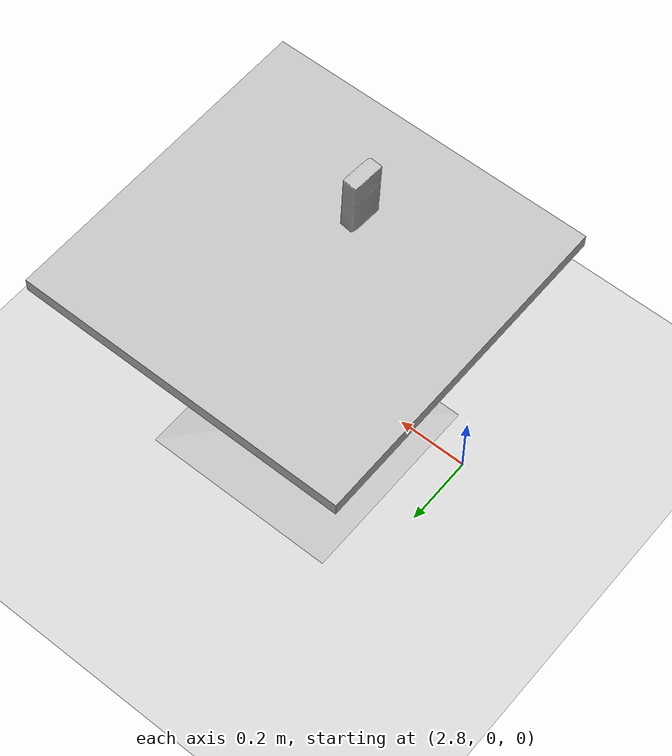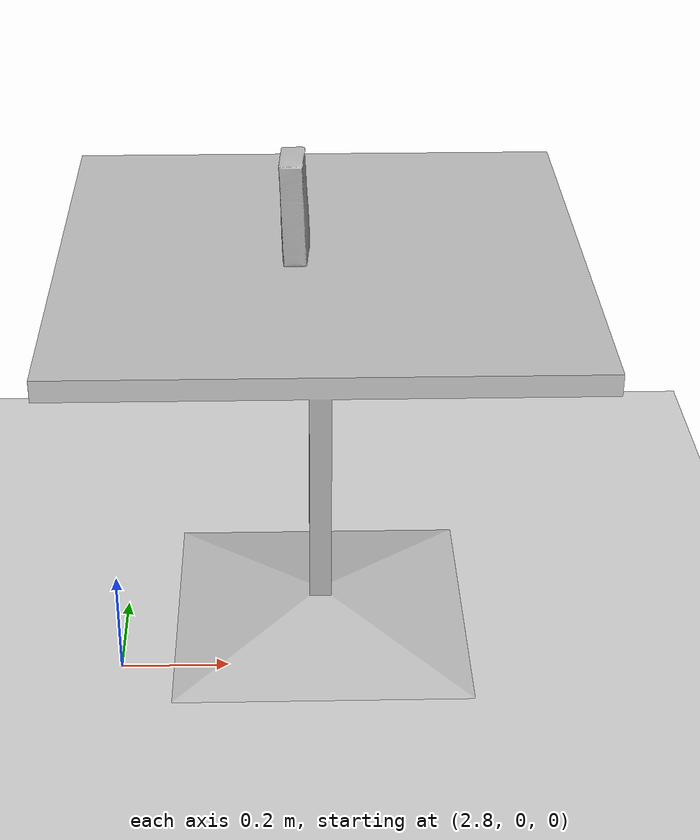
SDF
<sdf version="1.6">
 <world name="default">
  <model name="ground_plane">
   <static>1</static>
   <link name="link">
    <collision name="collision">
     <geometry><plane><normal>0 0 1</normal><size>100 100</size></plane></geometry>
     <surface><friction><ode><mu>100</mu><mu2>50</mu2></ode></friction></surface>
    </collision>
    <visual name="visual">
     <cast_shadows>0</cast_shadows>
     <geometry><plane><normal>0 0 1</normal><size>100 100</size></plane></geometry>
     <material>
      <script><uri>file://media/materials/scripts/gazebo.material</uri><name>Gazebo/Grey</name></script>
     </material>
    </visual>
   </link>
  </model>
  <light name="sun" type="directional">
   <pose>0 0 10 0 -0 0</pose>
   <diffuse>0.8 0.8 0.8 1</diffuse>
   <specular>0.1 0.1 0.1 1</specular>
   <attenuation>
    <range>1000</range>
    <constant>0.9</constant>
    <linear>0.01</linear>
    <quadratic>0.001</quadratic>
   </attenuation>
   <direction>-0.5 0.5 -1</direction>
  </light>
  <plugin name="ros_interface_plugin" filename="librotors_gazebo_ros_interface_plugin.so"/>
  <spherical_coordinates>
   <surface_model>EARTH_WGS84</surface_model>
   <latitude_deg>47.3667</latitude_deg>
   <longitude_deg>8.55</longitude_deg>
   <elevation>500</elevation>
   <heading_deg>0</heading_deg>
  </spherical_coordinates>
  <physics name="default_physics" default="0" type="ode">
   <ode>
    <solver>
     <type>quick</type>
     <iters>1000</iters>
     <sor>1.3</sor>
     <use_dynamic_moi_rescaling>0</use_dynamic_moi_rescaling>
    </solver>
    <constraints>
     <cfm>0</cfm>
     <erp>0.2</erp>
     <contact_max_correcting_vel>100</contact_max_correcting_vel>
     <contact_surface_layer>0.001</contact_surface_layer>
    </constraints>
   </ode>
   <max_step_size>0.01</max_step_size>
   <real_time_factor>1</real_time_factor>
   <real_time_update_rate>100</real_time_update_rate>
  </physics>
  <gravity>0 0 -9.8</gravity>
  <magnetic_field>6e-06 2.3e-05 -4.2e-05</magnetic_field>
  <atmosphere type="adiabatic"/>
  <scene><ambient>0.4 0.4 0.4 1</ambient><background>0.7 0.7 0.7 1</background><shadows>1</shadows></scene>
  <model name="robot">
   <link name="sugar">
    <inertial>
     <pose>-1 0 0 0 -0 0</pose>
     <mass>0.411</mass>
     <inertia><ixx>1</ixx><ixy>0</ixy><ixz>0</ixz><iyy>1</iyy><iyz>0</iyz><izz>1</izz></inertia>
    </inertial>
    <collision name="sugar_collision">
     <pose>-1 0 0 -1.57 0 0</pose>
     <geometry>
      <mesh>
       <scale>1 1 1</scale>
       <uri>/home/skywoodsz/uat/catkin_ws/src/ycb_model/cfg/sugar/texture_map.dae</uri>
      </mesh>
     </geometry>
    </collision>
    <visual name="sugar_visual">
     <pose>-1 0 0 -1.57 0 0</pose>
     <geometry>
      <mesh>
       <scale>1 1 1</scale>
       <uri>/home/skywoodsz/uat/catkin_ws/src/ycb_model/cfg/sugar/texture_map.dae</uri>
      </mesh>
     </geometry>
    </visual>
   </link>
   <pose>4.13053 0.009623 0.92222 0 0 -0.025746</pose>
  </model>
  <model name="cafe_table">
   <static>1</static>
   <link name="link">
    <collision name="surface">
     <pose>0 0 0.755 0 -0 0</pose>
     <geometry><box><size>0.913 0.913 0.04</size></box></geometry>
    </collision>
    <collision name="column">
     <pose>0 0 0.37 0 -0 0</pose>
     <geometry><box><size>0.042 0.042 0.74</size></box></geometry>
    </collision>
    <collision name="base">
     <pose>0 0 0.02 0 -0 0</pose>
     <geometry><box><size>0.56 0.56 0.04</size></box></geometry>
    </collision>
    <visual name="visual">
     <geometry><mesh><uri>model://cafe_table/meshes/cafe_table.dae</uri><scale>1 1 1</scale></mesh></geometry>
    </visual>
   </link>
   <pose>3.17715 0.167672 0 0 -0 0</pose>
  </model>
 </world>
</sdf>
